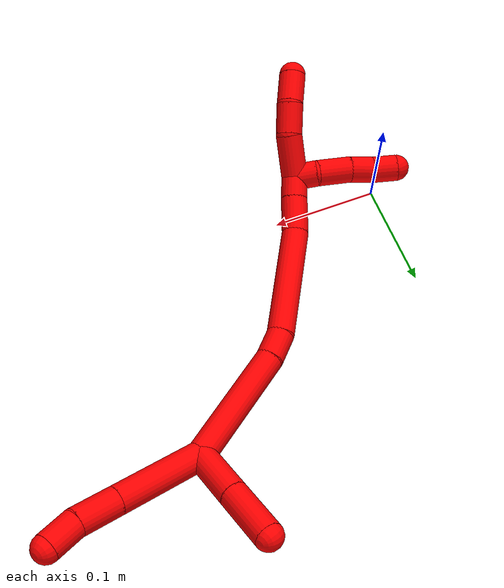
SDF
<sdf version="1.7">
 <world name="default">
  <model name="2">
   <static>0</static>
   <link name="2">
    <collision name="collision-cylinder-e_1_2_8">
     <pose>0.00819 -0.00569 0.040144 0.140793 0.199321 0.014101</pose>
     <geometry><cylinder><radius>0.0125</radius><length>0.082728</length></cylinder></geometry>
     <surface>
      <friction><ode><mu>1.16</mu><mu2>1.16</mu2><slip1>0</slip1><slip2>0</slip2></ode></friction>
      <contact><ode><kp>1e+06</kp><kd>1</kd><max_vel>0</max_vel><min_depth>0.001</min_depth></ode></contact>
     </surface>
    </collision>
    <visual name="visual-cylinder-e_1_2_8">
     <pose>0.00819 -0.00569 0.040144 0.140793 0.199321 0.014101</pose>
     <geometry><cylinder><radius>0.0125</radius><length>0.082728</length></cylinder></geometry>
     <material><ambient>1 0 0 1</ambient></material>
    </visual>
    <collision name="collision-cylinder-e_2_8_9">
     <pose>0.019588 -0.014036 0.0988 0.14256 0.169841 0.012156</pose>
     <geometry><cylinder><radius>0.0125</radius><length>0.037951</length></cylinder></geometry>
     <surface>
      <friction><ode><mu>1.16</mu><mu2>1.16</mu2><slip1>0</slip1><slip2>0</slip2></ode></friction>
      <contact><ode><kp>1e+06</kp><kd>1</kd><max_vel>0</max_vel><min_depth>0.001</min_depth></ode></contact>
     </surface>
    </collision>
    <visual name="visual-cylinder-e_2_8_9">
     <pose>0.019588 -0.014036 0.0988 0.14256 0.169841 0.012156</pose>
     <geometry><cylinder><radius>0.0125</radius><length>0.037951</length></cylinder></geometry>
     <material><ambient>1 0 0 1</ambient></material>
    </visual>
    <collision name="collision-cylinder-e_3_9_6">
     <pose>0.024425 -0.015663 0.131846 -0.070766 0.111428 -0.003948</pose>
     <geometry><cylinder><radius>0.0125</radius><length>0.029321</length></cylinder></geometry>
     <surface>
      <friction><ode><mu>1.16</mu><mu2>1.16</mu2><slip1>0</slip1><slip2>0</slip2></ode></friction>
      <contact><ode><kp>1e+06</kp><kd>1</kd><max_vel>0</max_vel><min_depth>0.001</min_depth></ode></contact>
     </surface>
    </collision>
    <visual name="visual-cylinder-e_3_9_6">
     <pose>0.024425 -0.015663 0.131846 -0.070766 0.111428 -0.003948</pose>
     <geometry><cylinder><radius>0.0125</radius><length>0.029321</length></cylinder></geometry>
     <material><ambient>1 0 0 1</ambient></material>
    </visual>
    <collision name="collision-cylinder-e_1_2_10">
     <pose>-0.015523 0.018386 0.008591 -1.13369 -0.652988 0.424577</pose>
     <geometry><cylinder><radius>0.0125</radius><length>0.0511</length></cylinder></geometry>
     <surface>
      <friction><ode><mu>1.16</mu><mu2>1.16</mu2><slip1>0</slip1><slip2>0</slip2></ode></friction>
      <contact><ode><kp>1e+06</kp><kd>1</kd><max_vel>0</max_vel><min_depth>0.001</min_depth></ode></contact>
     </surface>
    </collision>
    <visual name="visual-cylinder-e_1_2_10">
     <pose>-0.015523 0.018386 0.008591 -1.13369 -0.652988 0.424577</pose>
     <geometry><cylinder><radius>0.0125</radius><length>0.0511</length></cylinder></geometry>
     <material><ambient>1 0 0 1</ambient></material>
    </visual>
    <collision name="collision-cylinder-e_2_10_5">
     <pose>-0.045582 0.054788 0.025049 -1.15909 -0.63666 0.424869</pose>
     <geometry><cylinder><radius>0.0125</radius><length>0.0489</length></cylinder></geometry>
     <surface>
      <friction><ode><mu>1.16</mu><mu2>1.16</mu2><slip1>0</slip1><slip2>0</slip2></ode></friction>
      <contact><ode><kp>1e+06</kp><kd>1</kd><max_vel>0</max_vel><min_depth>0.001</min_depth></ode></contact>
     </surface>
    </collision>
    <visual name="visual-cylinder-e_2_10_5">
     <pose>-0.045582 0.054788 0.025049 -1.15909 -0.63666 0.424869</pose>
     <geometry><cylinder><radius>0.0125</radius><length>0.0489</length></cylinder></geometry>
     <material><ambient>1 0 0 1</ambient></material>
    </visual>
    <collision name="collision-cylinder-e_1_2_11">
     <pose>-0.012974 -0.015933 -0.050668 2.83692 -0.239567 -1.32977</pose>
     <geometry><cylinder><radius>0.0125</radius><length>0.109352</length></cylinder></geometry>
     <surface>
      <friction><ode><mu>1.16</mu><mu2>1.16</mu2><slip1>0</slip1><slip2>0</slip2></ode></friction>
      <contact><ode><kp>1e+06</kp><kd>1</kd><max_vel>0</max_vel><min_depth>0.001</min_depth></ode></contact>
     </surface>
    </collision>
    <visual name="visual-cylinder-e_1_2_11">
     <pose>-0.012974 -0.015933 -0.050668 2.83692 -0.239567 -1.32977</pose>
     <geometry><cylinder><radius>0.0125</radius><length>0.109352</length></cylinder></geometry>
     <material><ambient>1 0 0 1</ambient></material>
    </visual>
    <collision name="collision-cylinder-e_2_11_12">
     <pose>-0.028185 -0.037799 -0.113077 2.67376 -0.168481 -0.68114</pose>
     <geometry><cylinder><radius>0.0125</radius><length>0.026686</length></cylinder></geometry>
     <surface>
      <friction><ode><mu>1.16</mu><mu2>1.16</mu2><slip1>0</slip1><slip2>0</slip2></ode></friction>
      <contact><ode><kp>1e+06</kp><kd>1</kd><max_vel>0</max_vel><min_depth>0.001</min_depth></ode></contact>
     </surface>
    </collision>
    <visual name="visual-cylinder-e_2_11_12">
     <pose>-0.028185 -0.037799 -0.113077 2.67376 -0.168481 -0.68114</pose>
     <geometry><cylinder><radius>0.0125</radius><length>0.026686</length></cylinder></geometry>
     <material><ambient>1 0 0 1</ambient></material>
    </visual>
    <collision name="collision-cylinder-e_3_12_13">
     <pose>-0.034694 -0.078634 -0.165669 2.43456 -0.079331 -0.214268</pose>
     <geometry><cylinder><radius>0.0125</radius><length>0.107804</length></cylinder></geometry>
     <surface>
      <friction><ode><mu>1.16</mu><mu2>1.16</mu2><slip1>0</slip1><slip2>0</slip2></ode></friction>
      <contact><ode><kp>1e+06</kp><kd>1</kd><max_vel>0</max_vel><min_depth>0.001</min_depth></ode></contact>
     </surface>
    </collision>
    <visual name="visual-cylinder-e_3_12_13">
     <pose>-0.034694 -0.078634 -0.165669 2.43456 -0.079331 -0.214268</pose>
     <geometry><cylinder><radius>0.0125</radius><length>0.107804</length></cylinder></geometry>
     <material><ambient>1 0 0 1</ambient></material>
    </visual>
    <collision name="collision-cylinder-e_4_13_14">
     <pose>-0.042065 -0.127596 -0.216016 2.16475 -0.180737 -0.337819</pose>
     <geometry><cylinder><radius>0.0125</radius><length>0.034491</length></cylinder></geometry>
     <surface>
      <friction><ode><mu>1.16</mu><mu2>1.16</mu2><slip1>0</slip1><slip2>0</slip2></ode></friction>
      <contact><ode><kp>1e+06</kp><kd>1</kd><max_vel>0</max_vel><min_depth>0.001</min_depth></ode></contact>
     </surface>
    </collision>
    <visual name="visual-cylinder-e_4_13_14">
     <pose>-0.042065 -0.127596 -0.216016 2.16475 -0.180737 -0.337819</pose>
     <geometry><cylinder><radius>0.0125</radius><length>0.034491</length></cylinder></geometry>
     <material><ambient>1 0 0 1</ambient></material>
    </visual>
    <collision name="collision-cylinder-e_5_14_1">
     <pose>-0.047852 -0.15034 -0.231403 2.16697 -0.250588 -0.466695</pose>
     <geometry><cylinder><radius>0.0125</radius><length>0.021669</length></cylinder></geometry>
     <surface>
      <friction><ode><mu>1.16</mu><mu2>1.16</mu2><slip1>0</slip1><slip2>0</slip2></ode></friction>
      <contact><ode><kp>1e+06</kp><kd>1</kd><max_vel>0</max_vel><min_depth>0.001</min_depth></ode></contact>
     </surface>
    </collision>
    <visual name="visual-cylinder-e_5_14_1">
     <pose>-0.047852 -0.15034 -0.231403 2.16697 -0.250588 -0.466695</pose>
     <geometry><cylinder><radius>0.0125</radius><length>0.021669</length></cylinder></geometry>
     <material><ambient>1 0 0 1</ambient></material>
    </visual>
    <collision name="collision-cylinder-e_1_1_15">
     <pose>-0.060497 -0.177043 -0.239436 1.68903 -0.501973 -0.562026</pose>
     <geometry><cylinder><radius>0.0125</radius><length>0.041395</length></cylinder></geometry>
     <surface>
      <friction><ode><mu>1.16</mu><mu2>1.16</mu2><slip1>0</slip1><slip2>0</slip2></ode></friction>
      <contact><ode><kp>1e+06</kp><kd>1</kd><max_vel>0</max_vel><min_depth>0.001</min_depth></ode></contact>
     </surface>
    </collision>
    <visual name="visual-cylinder-e_1_1_15">
     <pose>-0.060497 -0.177043 -0.239436 1.68903 -0.501973 -0.562026</pose>
     <geometry><cylinder><radius>0.0125</radius><length>0.041395</length></cylinder></geometry>
     <material><ambient>1 0 0 1</ambient></material>
    </visual>
    <collision name="collision-cylinder-e_2_15_16">
     <pose>-0.076509 -0.207019 -0.247503 2.03093 -0.425788 -0.6705</pose>
     <geometry><cylinder><radius>0.0125</radius><length>0.02931</length></cylinder></geometry>
     <surface>
      <friction><ode><mu>1.16</mu><mu2>1.16</mu2><slip1>0</slip1><slip2>0</slip2></ode></friction>
      <contact><ode><kp>1e+06</kp><kd>1</kd><max_vel>0</max_vel><min_depth>0.001</min_depth></ode></contact>
     </surface>
    </collision>
    <visual name="visual-cylinder-e_2_15_16">
     <pose>-0.076509 -0.207019 -0.247503 2.03093 -0.425788 -0.6705</pose>
     <geometry><cylinder><radius>0.0125</radius><length>0.02931</length></cylinder></geometry>
     <material><ambient>1 0 0 1</ambient></material>
    </visual>
    <collision name="collision-cylinder-e_3_16_4">
     <pose>-0.086534 -0.230174 -0.261998 2.22394 -0.274602 -0.545465</pose>
     <geometry><cylinder><radius>0.0125</radius><length>0.029295</length></cylinder></geometry>
     <surface>
      <friction><ode><mu>1.16</mu><mu2>1.16</mu2><slip1>0</slip1><slip2>0</slip2></ode></friction>
      <contact><ode><kp>1e+06</kp><kd>1</kd><max_vel>0</max_vel><min_depth>0.001</min_depth></ode></contact>
     </surface>
    </collision>
    <visual name="visual-cylinder-e_3_16_4">
     <pose>-0.086534 -0.230174 -0.261998 2.22394 -0.274602 -0.545465</pose>
     <geometry><cylinder><radius>0.0125</radius><length>0.029295</length></cylinder></geometry>
     <material><ambient>1 0 0 1</ambient></material>
    </visual>
    <collision name="collision-cylinder-e_1_1_17">
     <pose>-0.058086 -0.154591 -0.243982 -2.55591 -0.754928 1.84125</pose>
     <geometry><cylinder><radius>0.0125</radius><length>0.02203</length></cylinder></geometry>
     <surface>
      <friction><ode><mu>1.16</mu><mu2>1.16</mu2><slip1>0</slip1><slip2>0</slip2></ode></friction>
      <contact><ode><kp>1e+06</kp><kd>1</kd><max_vel>0</max_vel><min_depth>0.001</min_depth></ode></contact>
     </surface>
    </collision>
    <visual name="visual-cylinder-e_1_1_17">
     <pose>-0.058086 -0.154591 -0.243982 -2.55591 -0.754928 1.84125</pose>
     <geometry><cylinder><radius>0.0125</radius><length>0.02203</length></cylinder></geometry>
     <material><ambient>1 0 0 1</ambient></material>
    </visual>
    <collision name="collision-cylinder-e_2_17_18">
     <pose>-0.073464 -0.143202 -0.263356 -2.64024 -0.496013 1.55964</pose>
     <geometry><cylinder><radius>0.0125</radius><length>0.032905</length></cylinder></geometry>
     <surface>
      <friction><ode><mu>1.16</mu><mu2>1.16</mu2><slip1>0</slip1><slip2>0</slip2></ode></friction>
      <contact><ode><kp>1e+06</kp><kd>1</kd><max_vel>0</max_vel><min_depth>0.001</min_depth></ode></contact>
     </surface>
    </collision>
    <visual name="visual-cylinder-e_2_17_18">
     <pose>-0.073464 -0.143202 -0.263356 -2.64024 -0.496013 1.55964</pose>
     <geometry><cylinder><radius>0.0125</radius><length>0.032905</length></cylinder></geometry>
     <material><ambient>1 0 0 1</ambient></material>
    </visual>
    <collision name="collision-cylinder-e_3_18_19">
     <pose>-0.086748 -0.130167 -0.28344 -2.45342 -0.5178 1.27296</pose>
     <geometry><cylinder><radius>0.0125</radius><length>0.022036</length></cylinder></geometry>
     <surface>
      <friction><ode><mu>1.16</mu><mu2>1.16</mu2><slip1>0</slip1><slip2>0</slip2></ode></friction>
      <contact><ode><kp>1e+06</kp><kd>1</kd><max_vel>0</max_vel><min_depth>0.001</min_depth></ode></contact>
     </surface>
    </collision>
    <visual name="visual-cylinder-e_3_18_19">
     <pose>-0.086748 -0.130167 -0.28344 -2.45342 -0.5178 1.27296</pose>
     <geometry><cylinder><radius>0.0125</radius><length>0.022036</length></cylinder></geometry>
     <material><ambient>1 0 0 1</ambient></material>
    </visual>
    <collision name="collision-cylinder-e_4_19_3">
     <pose>-0.098857 -0.118691 -0.298527 -2.52988 -0.616256 1.57868</pose>
     <geometry><cylinder><radius>0.0125</radius><length>0.023028</length></cylinder></geometry>
     <surface>
      <friction><ode><mu>1.16</mu><mu2>1.16</mu2><slip1>0</slip1><slip2>0</slip2></ode></friction>
      <contact><ode><kp>1e+06</kp><kd>1</kd><max_vel>0</max_vel><min_depth>0.001</min_depth></ode></contact>
     </surface>
    </collision>
    <visual name="visual-cylinder-e_4_19_3">
     <pose>-0.098857 -0.118691 -0.298527 -2.52988 -0.616256 1.57868</pose>
     <geometry><cylinder><radius>0.0125</radius><length>0.023028</length></cylinder></geometry>
     <material><ambient>1 0 0 1</ambient></material>
    </visual>
    <collision name="collision-sphere-3">
     <pose>-0.105512 -0.113295 -0.30622 0 -0 0</pose>
     <geometry><sphere><radius>0.0125</radius></sphere></geometry>
     <surface>
      <friction><ode><mu>1.16</mu><mu2>1.16</mu2><slip1>0</slip1><slip2>0</slip2></ode></friction>
      <contact><ode><kp>1e+06</kp><kd>1</kd><max_vel>0</max_vel><min_depth>0.001</min_depth></ode></contact>
     </surface>
    </collision>
    <visual name="visual-sphere-3">
     <pose>-0.105512 -0.113295 -0.30622 0 -0 0</pose>
     <geometry><sphere><radius>0.0125</radius></sphere></geometry>
     <material><ambient>1 0 0 1</ambient></material>
    </visual>
    <collision name="collision-sphere-19">
     <pose>-0.092202 -0.124087 -0.290835 0 -0 0</pose>
     <geometry><sphere><radius>0.0125</radius></sphere></geometry>
     <surface>
      <friction><ode><mu>1.16</mu><mu2>1.16</mu2><slip1>0</slip1><slip2>0</slip2></ode></friction>
      <contact><ode><kp>1e+06</kp><kd>1</kd><max_vel>0</max_vel><min_depth>0.001</min_depth></ode></contact>
     </surface>
    </collision>
    <visual name="visual-sphere-19">
     <pose>-0.092202 -0.124087 -0.290835 0 -0 0</pose>
     <geometry><sphere><radius>0.0125</radius></sphere></geometry>
     <material><ambient>1 0 0 1</ambient></material>
    </visual>
    <collision name="collision-sphere-5">
     <pose>-0.060118 0.072806 0.032916 0 -0 0</pose>
     <geometry><sphere><radius>0.0125</radius></sphere></geometry>
     <surface>
      <friction><ode><mu>1.16</mu><mu2>1.16</mu2><slip1>0</slip1><slip2>0</slip2></ode></friction>
      <contact><ode><kp>1e+06</kp><kd>1</kd><max_vel>0</max_vel><min_depth>0.001</min_depth></ode></contact>
     </surface>
    </collision>
    <visual name="visual-sphere-5">
     <pose>-0.060118 0.072806 0.032916 0 -0 0</pose>
     <geometry><sphere><radius>0.0125</radius></sphere></geometry>
     <material><ambient>1 0 0 1</ambient></material>
    </visual>
    <collision name="collision-sphere-10">
     <pose>-0.031046 0.036771 0.017181 0 -0 0</pose>
     <geometry><sphere><radius>0.0125</radius></sphere></geometry>
     <surface>
      <friction><ode><mu>1.16</mu><mu2>1.16</mu2><slip1>0</slip1><slip2>0</slip2></ode></friction>
      <contact><ode><kp>1e+06</kp><kd>1</kd><max_vel>0</max_vel><min_depth>0.001</min_depth></ode></contact>
     </surface>
    </collision>
    <visual name="visual-sphere-10">
     <pose>-0.031046 0.036771 0.017181 0 -0 0</pose>
     <geometry><sphere><radius>0.0125</radius></sphere></geometry>
     <material><ambient>1 0 0 1</ambient></material>
    </visual>
    <collision name="collision-sphere-6">
     <pose>0.026056 -0.014633 0.146379 0 -0 0</pose>
     <geometry><sphere><radius>0.0125</radius></sphere></geometry>
     <surface>
      <friction><ode><mu>1.16</mu><mu2>1.16</mu2><slip1>0</slip1><slip2>0</slip2></ode></friction>
      <contact><ode><kp>1e+06</kp><kd>1</kd><max_vel>0</max_vel><min_depth>0.001</min_depth></ode></contact>
     </surface>
    </collision>
    <visual name="visual-sphere-6">
     <pose>0.026056 -0.014633 0.146379 0 -0 0</pose>
     <geometry><sphere><radius>0.0125</radius></sphere></geometry>
     <material><ambient>1 0 0 1</ambient></material>
    </visual>
    <collision name="collision-sphere-9">
     <pose>0.022795 -0.016694 0.117313 0 -0 0</pose>
     <geometry><sphere><radius>0.0125</radius></sphere></geometry>
     <surface>
      <friction><ode><mu>1.16</mu><mu2>1.16</mu2><slip1>0</slip1><slip2>0</slip2></ode></friction>
      <contact><ode><kp>1e+06</kp><kd>1</kd><max_vel>0</max_vel><min_depth>0.001</min_depth></ode></contact>
     </surface>
    </collision>
    <visual name="visual-sphere-9">
     <pose>0.022795 -0.016694 0.117313 0 -0 0</pose>
     <geometry><sphere><radius>0.0125</radius></sphere></geometry>
     <material><ambient>1 0 0 1</ambient></material>
    </visual>
    <collision name="collision-sphere-2">
     <geometry><sphere><radius>0.0125</radius></sphere></geometry>
     <surface>
      <friction><ode><mu>1.16</mu><mu2>1.16</mu2><slip1>0</slip1><slip2>0</slip2></ode></friction>
      <contact><ode><kp>1e+06</kp><kd>1</kd><max_vel>0</max_vel><min_depth>0.001</min_depth></ode></contact>
     </surface>
    </collision>
    <visual name="visual-sphere-2">
     <geometry><sphere><radius>0.0125</radius></sphere></geometry>
     <material><ambient>1 0 0 1</ambient></material>
    </visual>
    <collision name="collision-sphere-8">
     <pose>0.01638 -0.011379 0.080288 0 -0 0</pose>
     <geometry><sphere><radius>0.0125</radius></sphere></geometry>
     <surface>
      <friction><ode><mu>1.16</mu><mu2>1.16</mu2><slip1>0</slip1><slip2>0</slip2></ode></friction>
      <contact><ode><kp>1e+06</kp><kd>1</kd><max_vel>0</max_vel><min_depth>0.001</min_depth></ode></contact>
     </surface>
    </collision>
    <visual name="visual-sphere-8">
     <pose>0.01638 -0.011379 0.080288 0 -0 0</pose>
     <geometry><sphere><radius>0.0125</radius></sphere></geometry>
     <material><ambient>1 0 0 1</ambient></material>
    </visual>
    <collision name="collision-sphere-11">
     <pose>-0.025947 -0.031867 -0.101336 0 -0 0</pose>
     <geometry><sphere><radius>0.0125</radius></sphere></geometry>
     <surface>
      <friction><ode><mu>1.16</mu><mu2>1.16</mu2><slip1>0</slip1><slip2>0</slip2></ode></friction>
      <contact><ode><kp>1e+06</kp><kd>1</kd><max_vel>0</max_vel><min_depth>0.001</min_depth></ode></contact>
     </surface>
    </collision>
    <visual name="visual-sphere-11">
     <pose>-0.025947 -0.031867 -0.101336 0 -0 0</pose>
     <geometry><sphere><radius>0.0125</radius></sphere></geometry>
     <material><ambient>1 0 0 1</ambient></material>
    </visual>
    <collision name="collision-sphere-12">
     <pose>-0.030422 -0.04373 -0.124817 0 -0 0</pose>
     <geometry><sphere><radius>0.0125</radius></sphere></geometry>
     <surface>
      <friction><ode><mu>1.16</mu><mu2>1.16</mu2><slip1>0</slip1><slip2>0</slip2></ode></friction>
      <contact><ode><kp>1e+06</kp><kd>1</kd><max_vel>0</max_vel><min_depth>0.001</min_depth></ode></contact>
     </surface>
    </collision>
    <visual name="visual-sphere-12">
     <pose>-0.030422 -0.04373 -0.124817 0 -0 0</pose>
     <geometry><sphere><radius>0.0125</radius></sphere></geometry>
     <material><ambient>1 0 0 1</ambient></material>
    </visual>
    <collision name="collision-sphere-13">
     <pose>-0.038965 -0.113537 -0.206522 0 -0 0</pose>
     <geometry><sphere><radius>0.0125</radius></sphere></geometry>
     <surface>
      <friction><ode><mu>1.16</mu><mu2>1.16</mu2><slip1>0</slip1><slip2>0</slip2></ode></friction>
      <contact><ode><kp>1e+06</kp><kd>1</kd><max_vel>0</max_vel><min_depth>0.001</min_depth></ode></contact>
     </surface>
    </collision>
    <visual name="visual-sphere-13">
     <pose>-0.038965 -0.113537 -0.206522 0 -0 0</pose>
     <geometry><sphere><radius>0.0125</radius></sphere></geometry>
     <material><ambient>1 0 0 1</ambient></material>
    </visual>
    <collision name="collision-sphere-14">
     <pose>-0.045165 -0.141655 -0.22551 0 -0 0</pose>
     <geometry><sphere><radius>0.0125</radius></sphere></geometry>
     <surface>
      <friction><ode><mu>1.16</mu><mu2>1.16</mu2><slip1>0</slip1><slip2>0</slip2></ode></friction>
      <contact><ode><kp>1e+06</kp><kd>1</kd><max_vel>0</max_vel><min_depth>0.001</min_depth></ode></contact>
     </surface>
    </collision>
    <visual name="visual-sphere-14">
     <pose>-0.045165 -0.141655 -0.22551 0 -0 0</pose>
     <geometry><sphere><radius>0.0125</radius></sphere></geometry>
     <material><ambient>1 0 0 1</ambient></material>
    </visual>
    <collision name="collision-sphere-1">
     <pose>-0.050538 -0.159026 -0.237296 0 -0 0</pose>
     <geometry><sphere><radius>0.0125</radius></sphere></geometry>
     <surface>
      <friction><ode><mu>1.16</mu><mu2>1.16</mu2><slip1>0</slip1><slip2>0</slip2></ode></friction>
      <contact><ode><kp>1e+06</kp><kd>1</kd><max_vel>0</max_vel><min_depth>0.001</min_depth></ode></contact>
     </surface>
    </collision>
    <visual name="visual-sphere-1">
     <pose>-0.050538 -0.159026 -0.237296 0 -0 0</pose>
     <geometry><sphere><radius>0.0125</radius></sphere></geometry>
     <material><ambient>1 0 0 1</ambient></material>
    </visual>
    <collision name="collision-sphere-18">
     <pose>-0.081295 -0.136248 -0.276046 0 -0 0</pose>
     <geometry><sphere><radius>0.0125</radius></sphere></geometry>
     <surface>
      <friction><ode><mu>1.16</mu><mu2>1.16</mu2><slip1>0</slip1><slip2>0</slip2></ode></friction>
      <contact><ode><kp>1e+06</kp><kd>1</kd><max_vel>0</max_vel><min_depth>0.001</min_depth></ode></contact>
     </surface>
    </collision>
    <visual name="visual-sphere-18">
     <pose>-0.081295 -0.136248 -0.276046 0 -0 0</pose>
     <geometry><sphere><radius>0.0125</radius></sphere></geometry>
     <material><ambient>1 0 0 1</ambient></material>
    </visual>
    <collision name="collision-sphere-15">
     <pose>-0.070456 -0.195061 -0.241577 0 -0 0</pose>
     <geometry><sphere><radius>0.0125</radius></sphere></geometry>
     <surface>
      <friction><ode><mu>1.16</mu><mu2>1.16</mu2><slip1>0</slip1><slip2>0</slip2></ode></friction>
      <contact><ode><kp>1e+06</kp><kd>1</kd><max_vel>0</max_vel><min_depth>0.001</min_depth></ode></contact>
     </surface>
    </collision>
    <visual name="visual-sphere-15">
     <pose>-0.070456 -0.195061 -0.241577 0 -0 0</pose>
     <geometry><sphere><radius>0.0125</radius></sphere></geometry>
     <material><ambient>1 0 0 1</ambient></material>
    </visual>
    <collision name="collision-sphere-16">
     <pose>-0.082562 -0.218977 -0.25343 0 -0 0</pose>
     <geometry><sphere><radius>0.0125</radius></sphere></geometry>
     <surface>
      <friction><ode><mu>1.16</mu><mu2>1.16</mu2><slip1>0</slip1><slip2>0</slip2></ode></friction>
      <contact><ode><kp>1e+06</kp><kd>1</kd><max_vel>0</max_vel><min_depth>0.001</min_depth></ode></contact>
     </surface>
    </collision>
    <visual name="visual-sphere-16">
     <pose>-0.082562 -0.218977 -0.25343 0 -0 0</pose>
     <geometry><sphere><radius>0.0125</radius></sphere></geometry>
     <material><ambient>1 0 0 1</ambient></material>
    </visual>
    <collision name="collision-sphere-4">
     <pose>-0.090506 -0.241371 -0.270565 0 -0 0</pose>
     <geometry><sphere><radius>0.0125</radius></sphere></geometry>
     <surface>
      <friction><ode><mu>1.16</mu><mu2>1.16</mu2><slip1>0</slip1><slip2>0</slip2></ode></friction>
      <contact><ode><kp>1e+06</kp><kd>1</kd><max_vel>0</max_vel><min_depth>0.001</min_depth></ode></contact>
     </surface>
    </collision>
    <visual name="visual-sphere-4">
     <pose>-0.090506 -0.241371 -0.270565 0 -0 0</pose>
     <geometry><sphere><radius>0.0125</radius></sphere></geometry>
     <material><ambient>1 0 0 1</ambient></material>
    </visual>
    <collision name="collision-sphere-17">
     <pose>-0.065634 -0.150156 -0.250667 0 -0 0</pose>
     <geometry><sphere><radius>0.0125</radius></sphere></geometry>
     <surface>
      <friction><ode><mu>1.16</mu><mu2>1.16</mu2><slip1>0</slip1><slip2>0</slip2></ode></friction>
      <contact><ode><kp>1e+06</kp><kd>1</kd><max_vel>0</max_vel><min_depth>0.001</min_depth></ode></contact>
     </surface>
    </collision>
    <visual name="visual-sphere-17">
     <pose>-0.065634 -0.150156 -0.250667 0 -0 0</pose>
     <geometry><sphere><radius>0.0125</radius></sphere></geometry>
     <material><ambient>1 0 0 1</ambient></material>
    </visual>
    <inertial>
     <pose>-0.032601 -0.067452 -0.104379 0 -0 0</pose>
     <mass>0.75</mass>
     <inertia>
      <ixx>8.9e-05</ixx>
      <ixy>0</ixy>
      <ixz>0</ixz>
      <iyy>-0.00016</iyy>
      <iyz>0</iyz>
      <izz>0.000146</izz>
     </inertia>
    </inertial>
   </link>
   <pose>0.248661 0.198357 0.026707 -0.715363 0.954888 -0.347158</pose>
  </model>
 </world>
</sdf>
